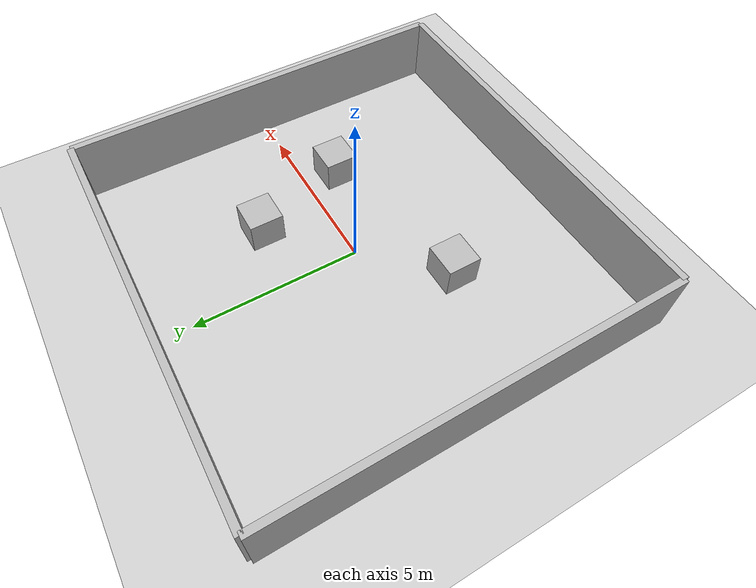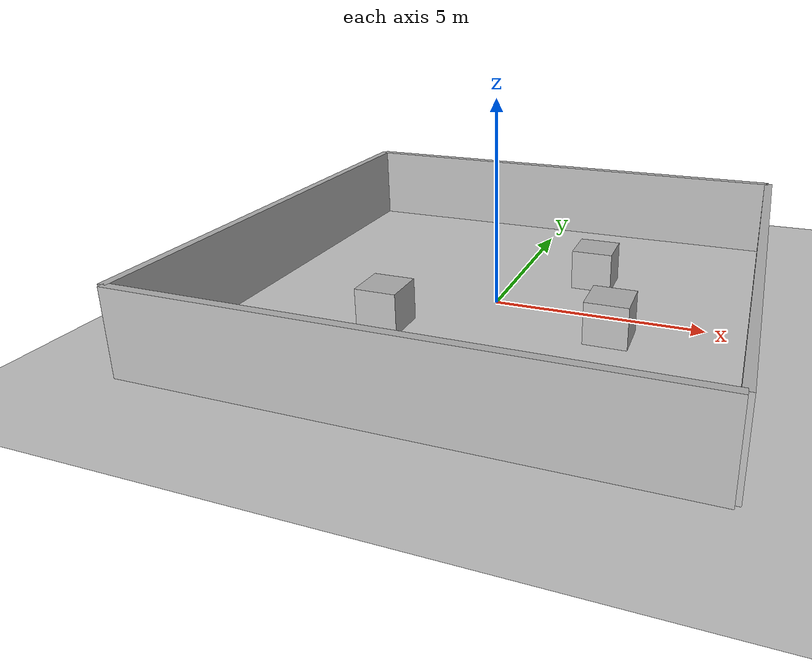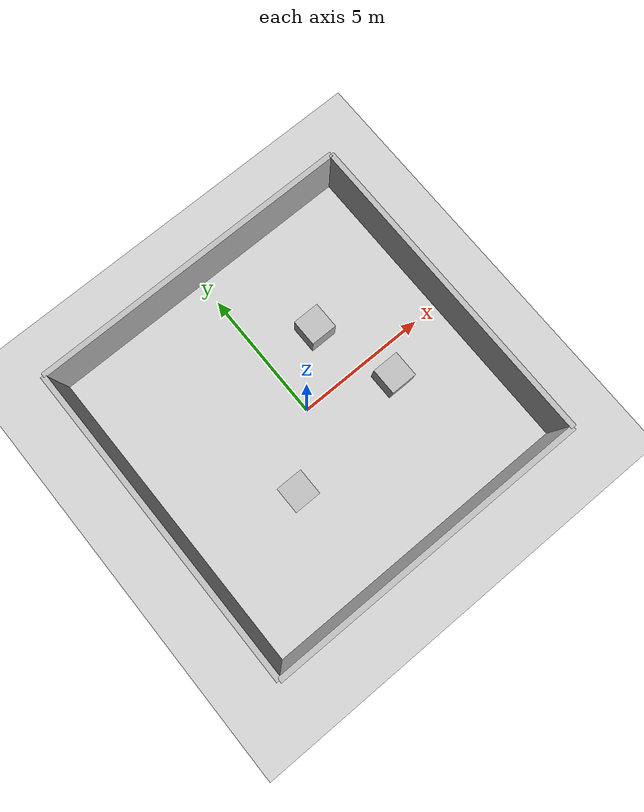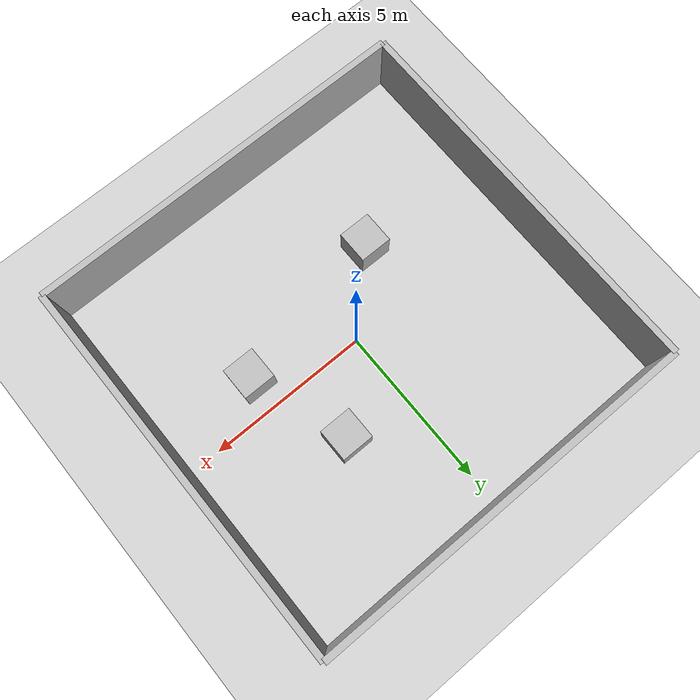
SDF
<?xml version="1.0"?>

<sdf version="1.9">

  <world name="mapping_world">

    <!-- Physics                   -->

    <physics name="physics" type="ignored">
      <max_step_size>0.001</max_step_size>
      <real_time_factor>1.0</real_time_factor>
    </physics>

    <!-- System Plugins            -->

    <plugin
      filename="gz-sim-physics-system"
      name="gz::sim::systems::Physics"/>

    <plugin
      filename="gz-sim-user-commands-system"
      name="gz::sim::systems::UserCommands"/>

    <plugin
      filename="gz-sim-scene-broadcaster-system"
      name="gz::sim::systems::SceneBroadcaster"/>

    <plugin
      filename="gz-sim-sensors-system"
      name="gz::sim::systems::Sensors">

      <render_engine>ogre2</render_engine>

    </plugin>

    <!-- Sun                       -->

    <include>
      <uri>https://fuel.gazebosim.org/1.0/OpenRobotics/models/Sun</uri>
    </include>

    <!-- Ground                    -->

    <include>
      <uri>https://fuel.gazebosim.org/1.0/OpenRobotics/models/Ground Plane</uri>
    </include>

    <model name="north_wall">
  <static>true</static>

  <link name="link">

    <collision name="collision">
      <geometry>
        <box>
          <size>12 0.2 2</size>
        </box>
      </geometry>
    </collision>

    <visual name="visual">
      <geometry>
        <box>
          <size>12 0.2 2</size>
        </box>
      </geometry>
    </visual>

    <pose>0 6 1 0 0 0</pose>

  </link>
  </model>

  <model name="south_wall">
  <static>true</static>

  <link name="link">

    <collision name="collision">
      <geometry>
        <box>
          <size>12 0.2 2</size>
        </box>
      </geometry>
    </collision>

    <visual name="visual">
      <geometry>
        <box>
          <size>12 0.2 2</size>
        </box>
      </geometry>
    </visual>

    <pose>0 -6 1 0 0 0</pose>

  </link>
  </model>

  <model name="east_wall">
  <static>true</static>

  <link name="link">

    <collision name="collision">
      <geometry>
        <box>
          <size>0.2 12 2</size>
        </box>
      </geometry>
    </collision>

    <visual name="visual">
      <geometry>
        <box>
          <size>0.2 12 2</size>
        </box>
      </geometry>
    </visual>

    <pose>6 0 1 0 0 0</pose>

  </link>
  </model>

  <model name="west_wall">
  <static>true</static>

  <link name="link">

    <collision name="collision">
      <geometry>
        <box>
          <size>0.2 12 2</size>
        </box>
      </geometry>
    </collision>

    <visual name="visual">
      <geometry>
        <box>
          <size>0.2 12 2</size>
        </box>
      </geometry>
    </visual>

    <pose>-6 0 1 0 0 0</pose>

  </link>
  </model>

  <model name="box_1">
  <static>true</static>

  <pose>2 2 0.5 0 0 0</pose>

  <link name="link">

    <collision name="collision">
      <geometry>
        <box>
          <size>1 1 1</size>
        </box>
      </geometry>
    </collision>

    <visual name="visual">
      <geometry>
        <box>
          <size>1 1 1</size>
        </box>
      </geometry>
    </visual>

  </link>

  </model>

  <model name="box_2">
  <static>true</static>

  <pose>-2 -2 0.5 0 0 0</pose>

  <link name="link">

    <collision name="collision">
      <geometry>
        <box>
          <size>1 1 1</size>
        </box>
      </geometry>
    </collision>

    <visual name="visual">
      <geometry>
        <box>
          <size>1 1 1</size>
        </box>
      </geometry>
    </visual>

  </link>

  </model>

  <model name="box_3">
  <static>true</static>

  <pose>3 -1 0.5 0 0 0</pose>

  <link name="link">

    <collision name="collision">
      <geometry>
        <box>
          <size>1 1 1</size>
        </box>
      </geometry>
    </collision>

    <visual name="visual">
      <geometry>
        <box>
          <size>1 1 1</size>
        </box>
      </geometry>
    </visual>

  </link>

  </model>

  </world>

</sdf>
